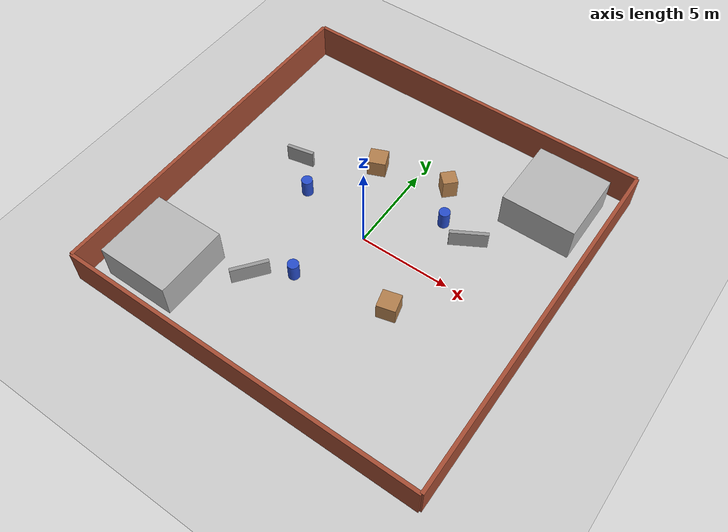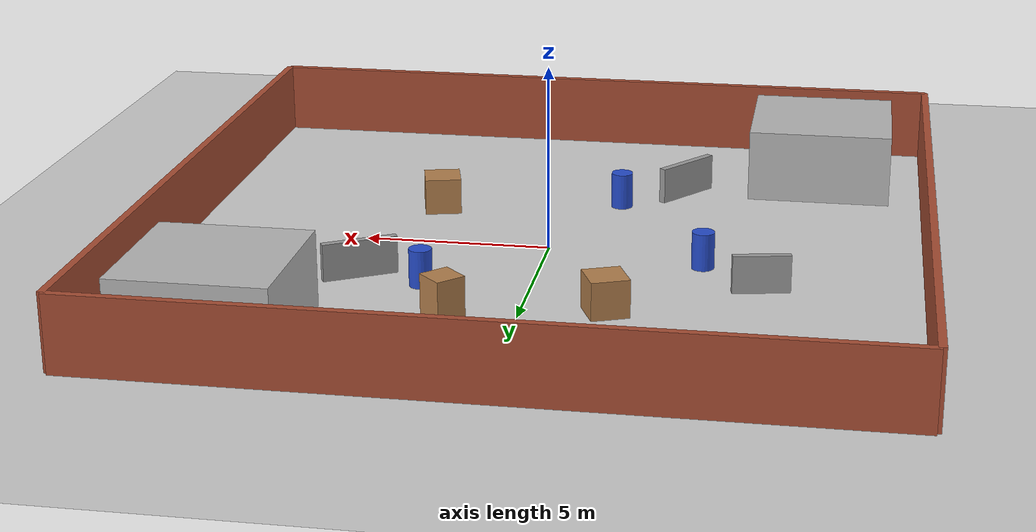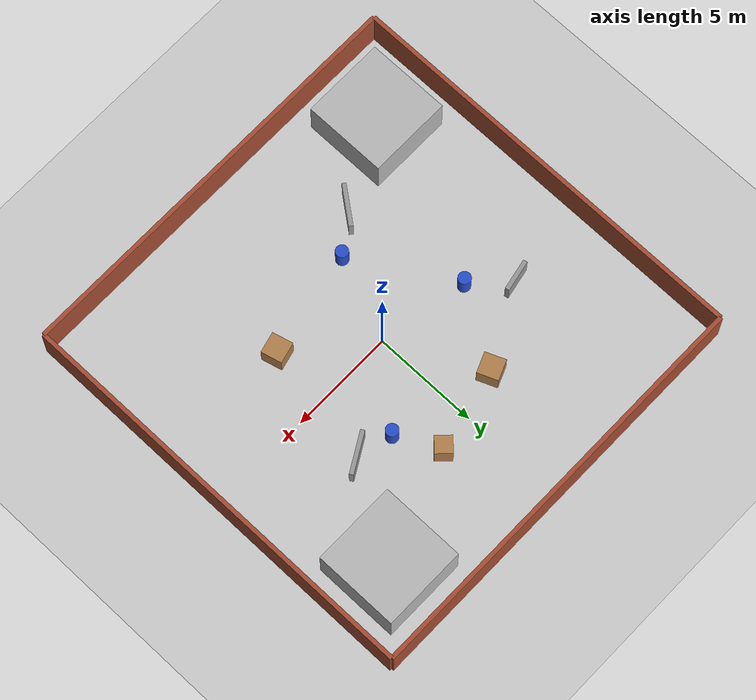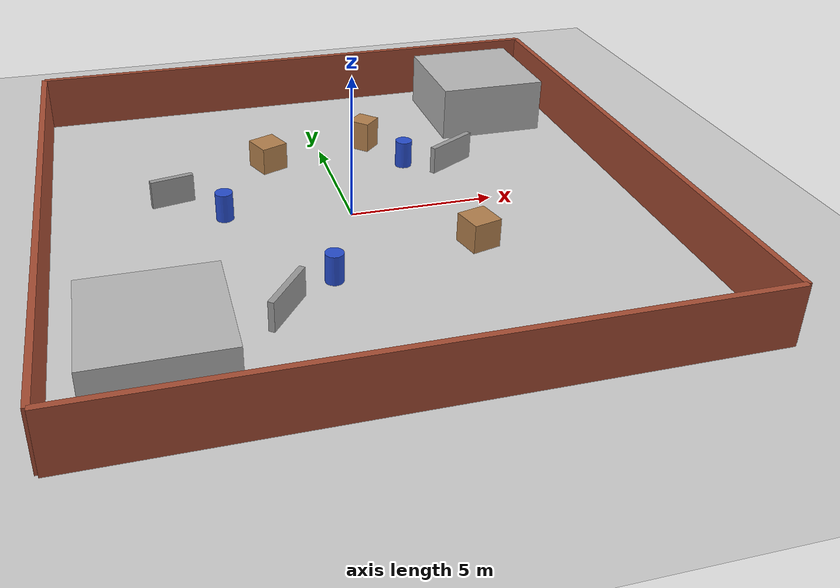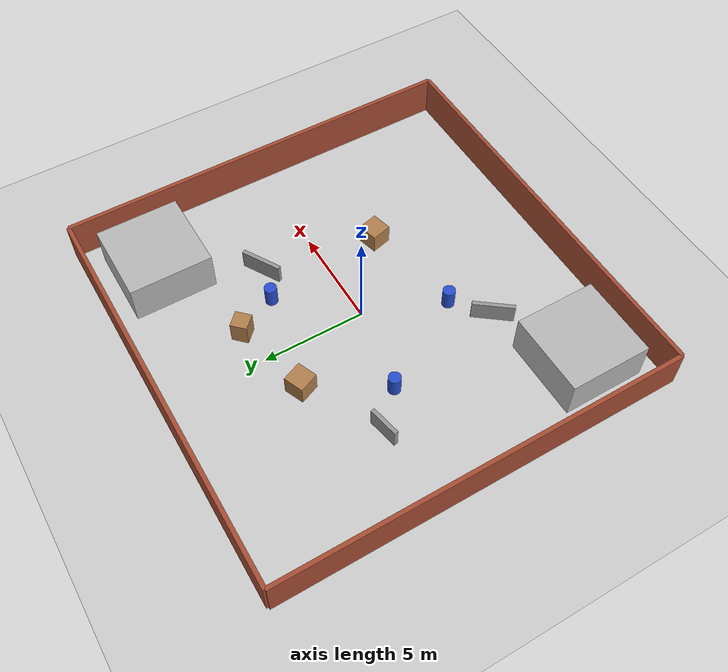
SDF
<?xml version="1.0" ?>
<sdf version="1.5">
  <world name="cs_bot_world">
    <!-- Basic environment settings -->
    <include>
      <uri>model://sun</uri>
    </include>
    <include>
      <uri>model://ground_plane</uri>
    </include>

    <!-- Physics engine parameter settings -->
    <physics type="ode">
      <real_time_update_rate>1000.0</real_time_update_rate>
      <max_step_size>0.001</max_step_size>
      <real_time_factor>1</real_time_factor>
      <ode>
        <solver>
          <type>quick</type>
          <iters>150</iters>
          <precon_iters>0</precon_iters>
          <sor>1.400000</sor>
          <use_dynamic_moi_rescaling>1</use_dynamic_moi_rescaling>
        </solver>
        <constraints>
          <cfm>0.00001</cfm>
          <erp>0.2</erp>
          <contact_max_correcting_vel>2000.000000</contact_max_correcting_vel>
          <contact_surface_layer>0.01000</contact_surface_layer>
        </constraints>
      </ode>
    </physics>

    <!-- Boundary walls -->
    <model name="boundary_wall_1">
      <static>true</static>
      <pose>10 0 1 0 0 0</pose>
      <link name="link">
        <collision name="collision">
          <geometry>
            <box>
              <size>0.2 20 2</size>
            </box>
          </geometry>
        </collision>
        <visual name="visual">
          <geometry>
            <box>
              <size>0.2 20 2</size>
            </box>
          </geometry>
          <material>
            <script>
              <uri>file://media/materials/scripts/gazebo.material</uri>
              <name>Gazebo/Bricks</name>
            </script>
          </material>
        </visual>
      </link>
    </model>

    <!-- Other three boundary walls -->
    <model name="boundary_wall_2">
      <static>true</static>
      <pose>-10 0 1 0 0 0</pose>
      <link name="link">
        <collision name="collision">
          <geometry>
            <box>
              <size>0.2 20 2</size>
            </box>
          </geometry>
        </collision>
        <visual name="visual">
          <geometry>
            <box>
              <size>0.2 20 2</size>
            </box>
          </geometry>
          <material>
            <script>
              <uri>file://media/materials/scripts/gazebo.material</uri>
              <name>Gazebo/Bricks</name>
            </script>
          </material>
        </visual>
      </link>
    </model>

    <model name="boundary_wall_3">
      <static>true</static>
      <pose>0 10 1 0 0 0</pose>
      <link name="link">
        <collision name="collision">
          <geometry>
            <box>
              <size>20 0.2 2</size>
            </box>
          </geometry>
        </collision>
        <visual name="visual">
          <geometry>
            <box>
              <size>20 0.2 2</size>
            </box>
          </geometry>
          <material>
            <script>
              <uri>file://media/materials/scripts/gazebo.material</uri>
              <name>Gazebo/Bricks</name>
            </script>
          </material>
        </visual>
      </link>
    </model>

    <model name="boundary_wall_4">
      <static>true</static>
      <pose>0 -10 1 0 0 0</pose>
      <link name="link">
        <collision name="collision">
          <geometry>
            <box>
              <size>20 0.2 2</size>
            </box>
          </geometry>
        </collision>
        <visual name="visual">
          <geometry>
            <box>
              <size>20 0.2 2</size>
            </box>
          </geometry>
          <material>
            <script>
              <uri>file://media/materials/scripts/gazebo.material</uri>
              <name>Gazebo/Bricks</name>
            </script>
          </material>
        </visual>
      </link>
    </model>

    <!-- A site area -->
    <!-- A site main building -->
    <model name="a_site">
      <static>true</static>
      <pose>7 7 1 0 0 0</pose>
      <link name="link">
        <collision name="collision">
          <geometry>
            <box>
              <size>4 4 2</size>
            </box>
          </geometry>
        </collision>
        <visual name="visual">
          <geometry>
            <box>
              <size>4 4 2</size>
            </box>
          </geometry>
          <material>
            <script>
              <uri>file://media/materials/scripts/gazebo.material</uri>
              <name>Gazebo/Concrete</name>
            </script>
          </material>
        </visual>
      </link>
    </model>

    <!-- B site area -->
    <!-- B site main building -->
    <model name="b_site">
      <static>true</static>
      <pose>-7 -7 1 0 0 0</pose>
      <link name="link">
        <collision name="collision">
          <geometry>
            <box>
              <size>4 4 2</size>
            </box>
          </geometry>
        </collision>
        <visual name="visual">
          <geometry>
            <box>
              <size>4 4 2</size>
            </box>
          </geometry>
          <material>
            <script>
              <uri>file://media/materials/scripts/gazebo.material</uri>
              <name>Gazebo/Concrete</name>
            </script>
          </material>
        </visual>
      </link>
    </model>

    <!-- Small cover group 1 -->
    <model name="cover_group_1">
      <static>true</static>
      <pose>4.5 2.8 0.5 0 0 0.523</pose>
      <link name="link">
        <collision name="collision">
          <geometry>
            <box>
              <size>2 0.2 1</size>
            </box>
          </geometry>
        </collision>
        <visual name="visual">
          <geometry>
            <box>
              <size>2 0.2 1</size>
            </box>
          </geometry>
          <material>
            <script>
              <uri>file://media/materials/scripts/gazebo.material</uri>
              <name>Gazebo/Grey</name>
            </script>
          </material>
        </visual>
      </link>
    </model>

    <!-- Small cover group 2 -->
    <model name="cover_group_2">
      <static>true</static>
      <pose>-3.2 -5.1 0.5 0 0 0.915</pose>
      <link name="link">
        <collision name="collision">
          <geometry>
            <box>
              <size>2 0.2 1</size>
            </box>
          </geometry>
        </collision>
        <visual name="visual">
          <geometry>
            <box>
              <size>2 0.2 1</size>
            </box>
          </geometry>
          <material>
            <script>
              <uri>file://media/materials/scripts/gazebo.material</uri>
              <name>Gazebo/Grey</name>
            </script>
          </material>
        </visual>
      </link>
    </model>

    <!-- Small cover group 3  -->
    <model name="cover_group_3">
      <static>true</static>
      <pose>-5.8 2.3 0.5 0 0 0.2</pose>
      <link name="link">
        <collision name="collision">
          <geometry>
            <box>
              <size>1.5 0.2 1</size>
            </box>
          </geometry>
        </collision>
        <visual name="visual">
          <geometry>
            <box>
              <size>1.5 0.2 1</size>
            </box>
          </geometry>
          <material>
            <script>
              <uri>file://media/materials/scripts/gazebo.material</uri>
              <name>Gazebo/Grey</name>
            </script>
          </material>
        </visual>
      </link>
    </model>

    <!-- Crate group 1 -->
    <model name="crates_1">
      <static>true</static>
      <pose>3.5 -2.8 0.5 0 0 0.25</pose>
      <link name="link">
        <collision name="collision">
          <geometry>
            <box>
              <size>1 1 1</size>
            </box>
          </geometry>
        </collision>
        <visual name="visual">
          <geometry>
            <box>
              <size>1 1 1</size>
            </box>
          </geometry>
          <material>
            <script>
              <uri>file://media/materials/scripts/gazebo.material</uri>
              <name>Gazebo/Wood</name>
            </script>
          </material>
        </visual>
      </link>
    </model>

    <!-- Crate group 2 -->
    <model name="crates_2">
      <static>true</static>
      <pose>-2.1 4.3 0.5 0 0 0.392</pose>
      <link name="link">
        <collision name="collision">
          <geometry>
            <box>
              <size>1 1 1</size>
            </box>
          </geometry>
        </collision>
        <visual name="visual">
          <geometry>
            <box>
              <size>1 1 1</size>
            </box>
          </geometry>
          <material>
            <script>
              <uri>file://media/materials/scripts/gazebo.material</uri>
              <name>Gazebo/Wood</name>
            </script>
          </material>
        </visual>
      </link>
    </model>

    <!-- Crate group 3  -->
    <model name="crates_3">
      <static>true</static>
      <pose>1.8 5.2 0.5 0 0 0.785</pose>
      <link name="link">
        <collision name="collision">
          <geometry>
            <box>
              <size>0.8 0.8 1.2</size>
            </box>
          </geometry>
        </collision>
        <visual name="visual">
          <geometry>
            <box>
              <size>0.8 0.8 1.2</size>
            </box>
          </geometry>
          <material>
            <script>
              <uri>file://media/materials/scripts/gazebo.material</uri>
              <name>Gazebo/Wood</name>
            </script>
          </material>
        </visual>
      </link>
    </model>

    <!-- Barrel 1 -->
    <model name="barrel_1">
      <static>true</static>
      <pose>2.8 3.2 0.5 0 0 0</pose>
      <link name="link">
        <collision name="collision">
          <geometry>
            <cylinder>
              <radius>0.3</radius>
              <length>1.0</length>
            </cylinder>
          </geometry>
        </collision>
        <visual name="visual">
          <geometry>
            <cylinder>
              <radius>0.3</radius>
              <length>1.0</length>
            </cylinder>
          </geometry>
          <material>
            <script>
              <uri>file://media/materials/scripts/gazebo.material</uri>
              <name>Gazebo/Blue</name>
            </script>
          </material>
        </visual>
      </link>
    </model>

    <!-- Barrel 2 -->
    <model name="barrel_2">
      <static>true</static>
      <pose>-1.5 -3.8 0.5 0 0 0</pose>
      <link name="link">
        <collision name="collision">
          <geometry>
            <cylinder>
              <radius>0.3</radius>
              <length>1.0</length>
            </cylinder>
          </geometry>
        </collision>
        <visual name="visual">
          <geometry>
            <cylinder>
              <radius>0.3</radius>
              <length>1.0</length>
            </cylinder>
          </geometry>
          <material>
            <script>
              <uri>file://media/materials/scripts/gazebo.material</uri>
              <name>Gazebo/Blue</name>
            </script>
          </material>
        </visual>
      </link>
    </model>

    <!-- Barrel 3 -->
    <model name="barrel_3">
      <static>true</static>
      <pose>-4.2 0.8 0.5 0 0 0</pose>
      <link name="link">
        <collision name="collision">
          <geometry>
            <cylinder>
              <radius>0.3</radius>
              <length>1.0</length>
            </cylinder>
          </geometry>
        </collision>
        <visual name="visual">
          <geometry>
            <cylinder>
              <radius>0.3</radius>
              <length>1.0</length>
            </cylinder>
          </geometry>
          <material>
            <script>
              <uri>file://media/materials/scripts/gazebo.material</uri>
              <name>Gazebo/Blue</name>
            </script>
          </material>
        </visual>
      </link>
    </model>
  </world>
</sdf>
